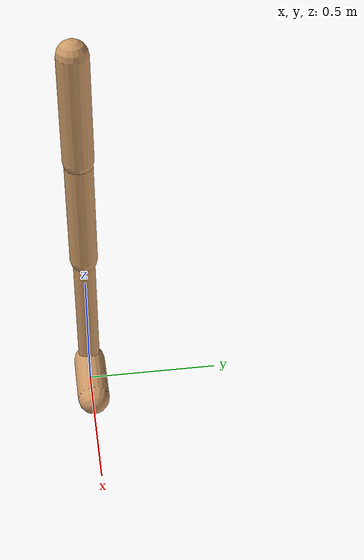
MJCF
<mujoco model="walker2d">
  <compiler angle="degree" coordinate="global" inertiafromgeom="true" />
  <default>
    <joint armature="0.01" damping=".1" limited="true" />
    <geom conaffinity="0" condim="3" contype="1" density="1000" friction="0.8 .1 .1" rgba="0.8 0.6 .4 1" />
  </default>
  <option integrator="RK4" timestep="0.002" />
  <worldbody>

    <body name="torso" pos="0 0 -0.043970132834388886">
      <joint armature="0" axis="1 0 0" damping="0" limited="false" name="ignorex" pos="0 0 0" stiffness="0" type="slide" />
      <joint armature="0" axis="0 0 1" damping="0" limited="false" name="ignorez" pos="0 0 0" ref="1.25" stiffness="0" type="slide" />
      <joint armature="0" axis="0 1 0" damping="0" limited="false" name="ignorey" pos="0 0 0" stiffness="0" type="hinge" />
      <geom fromto="0 0 1.45 0 0 1.05" name="torso_geom" size="0.05449531562467955" type="capsule" />
      <body name="thigh">
        <joint axis="0 -1 0" name="thigh_joint" pos="0 0 1.05" range="-150 0" type="hinge" />
        <geom fromto="0.0 0.0 1.05 0.0 0.0 0.6208279576583947" name="thigh_geom" size="0.05038853059436067" type="capsule" />
        <body name="leg" pos="0.0 0.0 0.020827957658394736">
          <joint axis="0 -1 0" name="leg_joint" pos="0 0 0.6" range="-150 0" type="hinge" />
          <geom fromto="0.0 0.0 0.6 0.0 0.0 0.12314217517599416" name="leg_geom" size="0.04031082447548854" type="capsule" />
          <body name="foot" pos="0.0 0.0 0.02314217517599415">
            <joint axis="0 -1 0" name="foot_joint" pos="0 0 0.1" range="-45 45" type="hinge" />
            <geom fromto="-0.0 0.0 0.10000000000000002 0.20496542649106272 0.0 0.10000000000000002" name="foot_geom" size="0.05948576643183154" type="capsule" />
          </body>
        </body>
      </body>

      <body name="thigh_left">
        <joint axis="0 -1 0" name="thigh_left_joint" pos="0 0 1.05" range="-150 0" type="hinge" />
        <geom fromto="0.0 0.0 1.05 0.0 0.0 0.6208279576583947" name="thigh_left_geom" rgba=".7 .3 .6 1" size="0.05038853059436067" type="capsule" />
        <body name="leg_left" pos="0.0 0.0 0.020827957658394736">
          <joint axis="0 -1 0" name="leg_left_joint" pos="0 0 0.6" range="-150 0" type="hinge" />
          <geom fromto="0.0 0.0 0.6 0.0 0.0 0.12314217517599416" name="leg_left_geom" rgba=".7 .3 .6 1" size="0.04031082447548854" type="capsule" />
          <body name="foot_left" pos="0.0 0.0 0.02314217517599415">
            <joint axis="0 -1 0" name="foot_left_joint" pos="0 0 0.1" range="-45 45" type="hinge" />
            <geom fromto="-0.0 0.0 0.10000000000000002 0.20496542649106272 0.0 0.10000000000000002" name="foot_left_geom" rgba=".7 .3 .6 1" size="0.05948576643183154" type="capsule" />
          </body>
        </body>
      </body>
    </body>
  </worldbody>
  <actuator>

    <motor ctrllimited="true" ctrlrange="-1.0 1.0" gear="100" joint="thigh_joint" />
    <motor ctrllimited="true" ctrlrange="-1.0 1.0" gear="100" joint="leg_joint" />
    <motor ctrllimited="true" ctrlrange="-1.0 1.0" gear="100" joint="foot_joint" />
    <motor ctrllimited="true" ctrlrange="-1.0 1.0" gear="100" joint="thigh_left_joint" />
    <motor ctrllimited="true" ctrlrange="-1.0 1.0" gear="100" joint="leg_left_joint" />
    <motor ctrllimited="true" ctrlrange="-1.0 1.0" gear="100" joint="foot_left_joint" />

  </actuator>
</mujoco>
